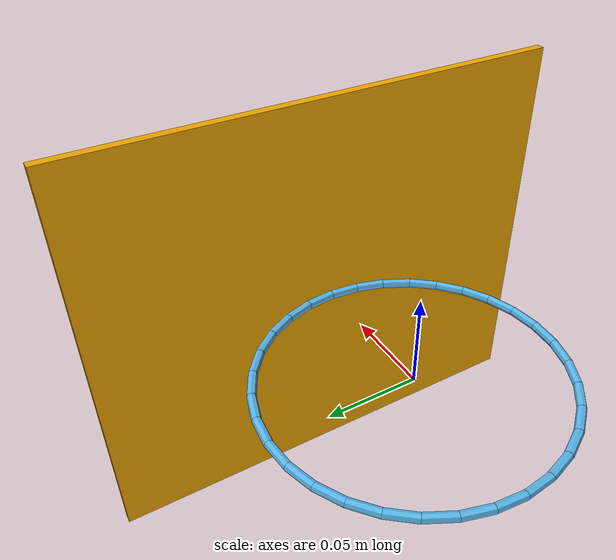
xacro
<?xml version="1.0" ?>
<robot name="basket" xmlns:xacro="http://www.ros.org/wiki/xacro">

    <!-- XACRO Properties -->
    <xacro:property name="mesh_filename" value="../meshes/basket_ring_convex_part_side.obj"/>
    <xacro:property name="basket_size" value="0.005 0.285 0.24"/>
    <xacro:property name="basket_origin" value="0.0875 0 0"/>

    <link name="basket">
        <visual>
            <origin xyz="${basket_origin}"/>
            <geometry>
                <box size="${basket_size}"/>
            </geometry>
        </visual>
        <collision>
            <origin xyz="${basket_origin}"/>
            <geometry>
                <box size="${basket_size}"/>
            </geometry>
        </collision>
    </link>

    <link name="basket_ring">

        <visual>
            <origin xyz="0 0 0" rpy="0 0 0.0"/>
            <geometry>
                <mesh filename="${mesh_filename}"/>
            </geometry>
        </visual>

        <visual>
            <origin xyz="0 0 0" rpy="0 0 0.19634954084936207"/>
            <geometry>
                <mesh filename="${mesh_filename}"/>
            </geometry>
        </visual>

        <visual>
            <origin xyz="0 0 0" rpy="0 0 0.39269908169872414"/>
            <geometry>
                <mesh filename="${mesh_filename}"/>
            </geometry>
        </visual>

        <visual>
            <origin xyz="0 0 0" rpy="0 0 0.5890486225480862"/>
            <geometry>
                <mesh filename="${mesh_filename}"/>
            </geometry>
        </visual>

        <visual>
            <origin xyz="0 0 0" rpy="0 0 0.7853981633974483"/>
            <geometry>
                <mesh filename="${mesh_filename}"/>
            </geometry>
        </visual>

        <visual>
            <origin xyz="0 0 0" rpy="0 0 0.9817477042468103"/>
            <geometry>
                <mesh filename="${mesh_filename}"/>
            </geometry>
        </visual>

        <visual>
            <origin xyz="0 0 0" rpy="0 0 1.1780972450961724"/>
            <geometry>
                <mesh filename="${mesh_filename}"/>
            </geometry>
        </visual>

        <visual>
            <origin xyz="0 0 0" rpy="0 0 1.3744467859455345"/>
            <geometry>
                <mesh filename="${mesh_filename}"/>
            </geometry>
        </visual>

        <visual>
            <origin xyz="0 0 0" rpy="0 0 1.5707963267948966"/>
            <geometry>
                <mesh filename="${mesh_filename}"/>
            </geometry>
        </visual>

        <visual>
            <origin xyz="0 0 0" rpy="0 0 1.7671458676442586"/>
            <geometry>
                <mesh filename="${mesh_filename}"/>
            </geometry>
        </visual>

        <visual>
            <origin xyz="0 0 0" rpy="0 0 1.9634954084936207"/>
            <geometry>
                <mesh filename="${mesh_filename}"/>
            </geometry>
        </visual>

        <visual>
            <origin xyz="0 0 0" rpy="0 0 2.1598449493429825"/>
            <geometry>
                <mesh filename="${mesh_filename}"/>
            </geometry>
        </visual>

        <visual>
            <origin xyz="0 0 0" rpy="0 0 2.356194490192345"/>
            <geometry>
                <mesh filename="${mesh_filename}"/>
            </geometry>
        </visual>

        <visual>
            <origin xyz="0 0 0" rpy="0 0 2.552544031041707"/>
            <geometry>
                <mesh filename="${mesh_filename}"/>
            </geometry>
        </visual>

        <visual>
            <origin xyz="0 0 0" rpy="0 0 2.748893571891069"/>
            <geometry>
                <mesh filename="${mesh_filename}"/>
            </geometry>
        </visual>

        <visual>
            <origin xyz="0 0 0" rpy="0 0 2.945243112740431"/>
            <geometry>
                <mesh filename="${mesh_filename}"/>
            </geometry>
        </visual>

        <visual>
            <origin xyz="0 0 0" rpy="0 0 3.141592653589793"/>
            <geometry>
                <mesh filename="${mesh_filename}"/>
            </geometry>
        </visual>

        <visual>
            <origin xyz="0 0 0" rpy="0 0 3.3379421944391554"/>
            <geometry>
                <mesh filename="${mesh_filename}"/>
            </geometry>
        </visual>

        <visual>
            <origin xyz="0 0 0" rpy="0 0 3.5342917352885173"/>
            <geometry>
                <mesh filename="${mesh_filename}"/>
            </geometry>
        </visual>

        <visual>
            <origin xyz="0 0 0" rpy="0 0 3.730641276137879"/>
            <geometry>
                <mesh filename="${mesh_filename}"/>
            </geometry>
        </visual>

        <visual>
            <origin xyz="0 0 0" rpy="0 0 3.9269908169872414"/>
            <geometry>
                <mesh filename="${mesh_filename}"/>
            </geometry>
        </visual>

        <visual>
            <origin xyz="0 0 0" rpy="0 0 4.123340357836604"/>
            <geometry>
                <mesh filename="${mesh_filename}"/>
            </geometry>
        </visual>

        <visual>
            <origin xyz="0 0 0" rpy="0 0 4.319689898685965"/>
            <geometry>
                <mesh filename="${mesh_filename}"/>
            </geometry>
        </visual>

        <visual>
            <origin xyz="0 0 0" rpy="0 0 4.516039439535327"/>
            <geometry>
                <mesh filename="${mesh_filename}"/>
            </geometry>
        </visual>

        <visual>
            <origin xyz="0 0 0" rpy="0 0 4.71238898038469"/>
            <geometry>
                <mesh filename="${mesh_filename}"/>
            </geometry>
        </visual>

        <visual>
            <origin xyz="0 0 0" rpy="0 0 4.908738521234052"/>
            <geometry>
                <mesh filename="${mesh_filename}"/>
            </geometry>
        </visual>

        <visual>
            <origin xyz="0 0 0" rpy="0 0 5.105088062083414"/>
            <geometry>
                <mesh filename="${mesh_filename}"/>
            </geometry>
        </visual>

        <visual>
            <origin xyz="0 0 0" rpy="0 0 5.301437602932776"/>
            <geometry>
                <mesh filename="${mesh_filename}"/>
            </geometry>
        </visual>

        <visual>
            <origin xyz="0 0 0" rpy="0 0 5.497787143782138"/>
            <geometry>
                <mesh filename="${mesh_filename}"/>
            </geometry>
        </visual>

        <visual>
            <origin xyz="0 0 0" rpy="0 0 5.6941366846315"/>
            <geometry>
                <mesh filename="${mesh_filename}"/>
            </geometry>
        </visual>

        <visual>
            <origin xyz="0 0 0" rpy="0 0 5.890486225480862"/>
            <geometry>
                <mesh filename="${mesh_filename}"/>
            </geometry>
        </visual>

        <visual>
            <origin xyz="0 0 0" rpy="0 0 6.086835766330224"/>
            <geometry>
                <mesh filename="${mesh_filename}"/>
            </geometry>
        </visual>

        <collision>
        <origin xyz="0 0 0" rpy="0 0 0.0"/>
        <geometry>
            <mesh filename="${mesh_filename}"/>
        </geometry>
        </collision>

        <collision>
            <origin xyz="0 0 0" rpy="0 0 0.19634954084936207"/>
            <geometry>
                <mesh filename="${mesh_filename}"/>
            </geometry>
        </collision>

        <collision>
            <origin xyz="0 0 0" rpy="0 0 0.39269908169872414"/>
            <geometry>
                <mesh filename="${mesh_filename}"/>
            </geometry>
        </collision>

        <collision>
            <origin xyz="0 0 0" rpy="0 0 0.5890486225480862"/>
            <geometry>
                <mesh filename="${mesh_filename}"/>
            </geometry>
        </collision>

        <collision>
            <origin xyz="0 0 0" rpy="0 0 0.7853981633974483"/>
            <geometry>
                <mesh filename="${mesh_filename}"/>
            </geometry>
        </collision>

        <collision>
            <origin xyz="0 0 0" rpy="0 0 0.9817477042468103"/>
            <geometry>
                <mesh filename="${mesh_filename}"/>
            </geometry>
        </collision>

        <collision>
            <origin xyz="0 0 0" rpy="0 0 1.1780972450961724"/>
            <geometry>
                <mesh filename="${mesh_filename}"/>
            </geometry>
        </collision>

        <collision>
            <origin xyz="0 0 0" rpy="0 0 1.3744467859455345"/>
            <geometry>
                <mesh filename="${mesh_filename}"/>
            </geometry>
        </collision>

        <collision>
            <origin xyz="0 0 0" rpy="0 0 1.5707963267948966"/>
            <geometry>
                <mesh filename="${mesh_filename}"/>
            </geometry>
        </collision>

        <collision>
            <origin xyz="0 0 0" rpy="0 0 1.7671458676442586"/>
            <geometry>
                <mesh filename="${mesh_filename}"/>
            </geometry>
        </collision>

        <collision>
            <origin xyz="0 0 0" rpy="0 0 1.9634954084936207"/>
            <geometry>
                <mesh filename="${mesh_filename}"/>
            </geometry>
        </collision>

        <collision>
            <origin xyz="0 0 0" rpy="0 0 2.1598449493429825"/>
            <geometry>
                <mesh filename="${mesh_filename}"/>
            </geometry>
        </collision>

        <collision>
            <origin xyz="0 0 0" rpy="0 0 2.356194490192345"/>
            <geometry>
                <mesh filename="${mesh_filename}"/>
            </geometry>
        </collision>

        <collision>
            <origin xyz="0 0 0" rpy="0 0 2.552544031041707"/>
            <geometry>
                <mesh filename="${mesh_filename}"/>
            </geometry>
        </collision>

        <collision>
            <origin xyz="0 0 0" rpy="0 0 2.748893571891069"/>
            <geometry>
                <mesh filename="${mesh_filename}"/>
            </geometry>
        </collision>

        <collision>
            <origin xyz="0 0 0" rpy="0 0 2.945243112740431"/>
            <geometry>
                <mesh filename="${mesh_filename}"/>
            </geometry>
        </collision>

        <collision>
            <origin xyz="0 0 0" rpy="0 0 3.141592653589793"/>
            <geometry>
                <mesh filename="${mesh_filename}"/>
            </geometry>
        </collision>

        <collision>
            <origin xyz="0 0 0" rpy="0 0 3.3379421944391554"/>
            <geometry>
                <mesh filename="${mesh_filename}"/>
            </geometry>
        </collision>

        <collision>
            <origin xyz="0 0 0" rpy="0 0 3.5342917352885173"/>
            <geometry>
                <mesh filename="${mesh_filename}"/>
            </geometry>
        </collision>

        <collision>
            <origin xyz="0 0 0" rpy="0 0 3.730641276137879"/>
            <geometry>
                <mesh filename="${mesh_filename}"/>
            </geometry>
        </collision>

        <collision>
            <origin xyz="0 0 0" rpy="0 0 3.9269908169872414"/>
            <geometry>
                <mesh filename="${mesh_filename}"/>
            </geometry>
        </collision>

        <collision>
            <origin xyz="0 0 0" rpy="0 0 4.123340357836604"/>
            <geometry>
                <mesh filename="${mesh_filename}"/>
            </geometry>
        </collision>

        <collision>
            <origin xyz="0 0 0" rpy="0 0 4.319689898685965"/>
            <geometry>
                <mesh filename="${mesh_filename}"/>
            </geometry>
        </collision>

        <collision>
            <origin xyz="0 0 0" rpy="0 0 4.516039439535327"/>
            <geometry>
                <mesh filename="${mesh_filename}"/>
            </geometry>
        </collision>

        <collision>
            <origin xyz="0 0 0" rpy="0 0 4.71238898038469"/>
            <geometry>
                <mesh filename="${mesh_filename}"/>
            </geometry>
        </collision>

        <collision>
            <origin xyz="0 0 0" rpy="0 0 4.908738521234052"/>
            <geometry>
                <mesh filename="${mesh_filename}"/>
            </geometry>
        </collision>

        <collision>
            <origin xyz="0 0 0" rpy="0 0 5.105088062083414"/>
            <geometry>
                <mesh filename="${mesh_filename}"/>
            </geometry>
        </collision>

        <collision>
            <origin xyz="0 0 0" rpy="0 0 5.301437602932776"/>
            <geometry>
                <mesh filename="${mesh_filename}"/>
            </geometry>
        </collision>

        <collision>
            <origin xyz="0 0 0" rpy="0 0 5.497787143782138"/>
            <geometry>
                <mesh filename="${mesh_filename}"/>
            </geometry>
        </collision>

        <collision>
            <origin xyz="0 0 0" rpy="0 0 5.6941366846315"/>
            <geometry>
                <mesh filename="${mesh_filename}"/>
            </geometry>
        </collision>

        <collision>
            <origin xyz="0 0 0" rpy="0 0 5.890486225480862"/>
            <geometry>
                <mesh filename="${mesh_filename}"/>
            </geometry>
        </collision>

        <collision>
            <origin xyz="0 0 0" rpy="0 0 6.086835766330224"/>
            <geometry>
                <mesh filename="${mesh_filename}"/>
            </geometry>
        </collision>

    </link>

    <joint name="fixed_basket_to_ring" type="fixed">
        <parent link="basket"/>
        <child link="basket_ring"/>
    </joint>
</robot>
